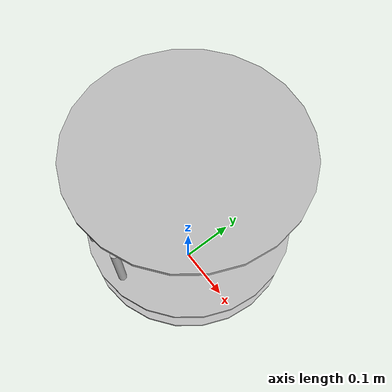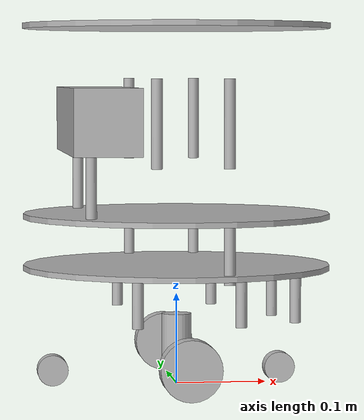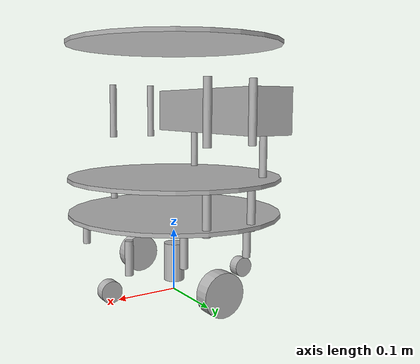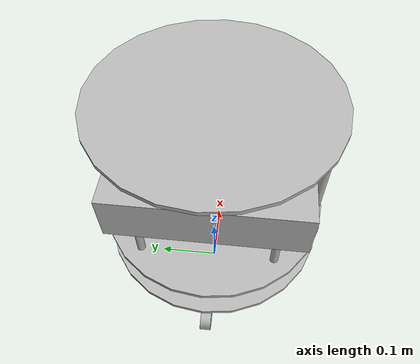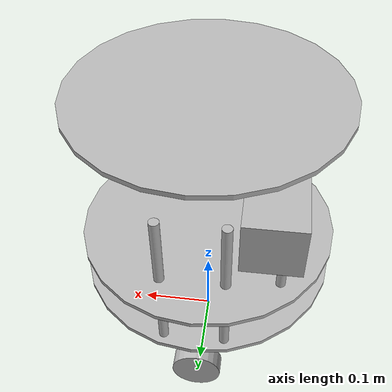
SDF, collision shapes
<?xml version="1.0" ?>
<sdf version="1.4">
  <model name="turtlebot2">
    <link name="rack">
      <inertial>
        <pose>0.001453 -0.000453 0.029787 0 0 0</pose>
        <inertia>
          <ixx>0.0001</ixx>
          <ixy>0.0</ixy>
          <ixz>0.0</ixz>
          <iyy>0.0001</iyy>
          <iyz>0.0</iyz>
          <izz>0.0001</izz>
        </inertia>
        <mass>2.4000</mass>
      </inertial>

      <collision name="plate_bottom_collision">
        <pose>0.0 0.0 0.1306 0 0 0</pose>
        <geometry>
          <cylinder>
	    <radius>0.170</radius>
	    <length>0.006</length>
          </cylinder>
        </geometry>
      </collision>
      <visual name="plate_bottom_visual">
        <pose>0.02364 0.0 0.1306 0 0 0</pose>
        <geometry>
          <mesh>
            <uri>model://turtlebot2/meshes/plate_bottom.dae</uri>
          </mesh>
        </geometry>
      </visual>

      <collision name="plate_middle_collision">
        <pose>0.0 0.0 0.1874 0 0 0</pose>
        <geometry>
          <cylinder>
	    <radius>0.170</radius>
	    <length>0.006</length>
          </cylinder>
        </geometry>
      </collision>
      <visual name="plate_middle_visual">
        <pose> -0.01364 0.0 0.1874 0 0 0</pose>
        <geometry>
          <mesh>
            <uri>model://turtlebot2/meshes/plate_middle.dae</uri>
          </mesh>
        </geometry>
      </visual>

      <collision name="plate_top_collision">
        <pose>0.0 0.0 0.3966 0 0 0</pose>
        <geometry>
          <cylinder>
	    <radius>0.170</radius>
	    <length>0.006</length>
          </cylinder>
        </geometry>
      </collision>
      <visual name="plate_middle_visual">
        <pose>-0.01364 0.0  0.3966 0 0 0</pose>
        <geometry>
          <mesh>
            <uri>model://turtlebot2/meshes/plate_middle.dae</uri>
          </mesh>
        </geometry>
      </visual>

      <collision name="3d_sensor_pole_0_collision">
        <pose>-0.1024 0.098  0.2372 0 0 0</pose>
        <geometry>
          <cylinder>
	    <radius>0.006</radius>
	    <length>0.0936</length>
          </cylinder>
        </geometry>
      </collision>
      <visual name="3d_sensor_pole_0_visual">
        <pose>-0.1024 0.098  0.2372 0 0 0</pose>
        <geometry>
          <mesh>
            <uri>model://turtlebot2/meshes/pole_kinect.dae</uri>
          </mesh>
        </geometry>
      </visual>

      <collision name="3d_sensor_pole_1_collision">
        <pose>-0.1024 -0.098  0.2372 0 0 0</pose>
        <geometry>
          <cylinder>
	    <radius>0.006</radius>
	    <length>0.0936</length>
          </cylinder>
        </geometry>
      </collision>
      <visual name="3d_sensor_pole_1_visual">
        <pose>-0.1024 -0.098  0.2372 0 0 0</pose>
        <geometry>
          <mesh>
            <uri>model://turtlebot2/meshes/pole_kinect.dae</uri>
          </mesh>
        </geometry>
      </visual>

      <collision name="bottom_pole_0_collision">
        <pose>0.120 0.08 0.09 0 0 0</pose>
        <geometry>
          <cylinder>
	    <radius>0.006</radius>
	    <length>0.0492</length>
          </cylinder>
        </geometry>
      </collision>
      <visual name="pole_bottom_0_visual">
        <pose>0.120 0.08 0.1 0 0 0</pose>
        <geometry>
          <mesh>
            <uri>model://turtlebot2/meshes/pole_middle.dae</uri>
          </mesh>
        </geometry>
      </visual>

      <collision name="bottom_pole_1_collision">
        <pose>0.055 0.120 0.1 0 0 0</pose>
        <geometry>
          <cylinder>
	    <radius>0.006</radius>
	    <length>0.0492</length>
          </cylinder>
        </geometry>
      </collision>
      <visual name="pole_bottom_1_visual">
        <pose>0.055 0.120 0.1 0 0 0</pose>
        <geometry>
          <mesh>
            <uri>model://turtlebot2/meshes/pole_middle.dae</uri>
          </mesh>
        </geometry>
      </visual>

      <collision name="bottom_pole_2_collision">
        <pose>-0.055 0.120 0.1 0 0 0</pose>
        <geometry>
          <cylinder>
	    <radius>0.006</radius>
	    <length>0.0492</length>
          </cylinder>
        </geometry>
      </collision>
      <visual name="pole_bottom_2_visual">
        <pose>-0.055 0.120 0.1 0 0 0</pose>
        <geometry>
          <mesh>
            <uri>model://turtlebot2/meshes/pole_middle.dae</uri>
          </mesh>
        </geometry>
      </visual>

      <collision name="bottom_pole_3_collision">
        <pose>0.120 -0.08 0.1 0 0 0</pose>
        <geometry>
          <cylinder>
	    <radius>0.006</radius>
	    <length>0.0492</length>
          </cylinder>
        </geometry>
      </collision>
      <visual name="pole_bottom_3_visual">
        <pose>0.120 -0.08 0.1 0 0 0</pose>
        <geometry>
          <mesh>
            <uri>model://turtlebot2/meshes/pole_middle.dae</uri>
          </mesh>
        </geometry>
      </visual>

      <collision name="bottom_pole_4_collision">
        <pose>0.055 -0.120 0.1 0 0 0</pose>
        <geometry>
          <cylinder>
	    <radius>0.006</radius>
	    <length>0.0492</length>
          </cylinder>
        </geometry>
      </collision>
      <visual name="pole_bottom_4_visual">
        <pose>0.055 -0.120 0.1 0 0 0</pose>
        <geometry>
          <mesh>
            <uri>model://turtlebot2/meshes/pole_middle.dae</uri>
          </mesh>
        </geometry>
      </visual>

      <collision name="bottom_pole_5_collision">
        <pose>-0.055 -0.120 0.1 0 0 0</pose>
        <geometry>
          <cylinder>
	    <radius>0.006</radius>
	    <length>0.0492</length>
          </cylinder>
        </geometry>
      </collision>
      <visual name="pole_bottom_5_visual">
        <pose>-0.055 -0.120 0.1 0 0 0</pose>
        <geometry>
          <mesh>
            <uri>model://turtlebot2/meshes/pole_bottom.dae</uri>
          </mesh>
        </geometry>
      </visual>

      <collision name="middle_pole_0_collision">
        <pose>0.0381 0.1505 0.1540 0 0 0</pose>
        <geometry>
          <cylinder>
	    <radius>0.006</radius>
	    <length>0.0608</length>
          </cylinder>
        </geometry>
      </collision>
      <visual name="middle_pole_0_visual">
        <pose>0.0381 0.1505 0.1540 0 0 0</pose>
        <geometry>
          <mesh>
            <uri>model://turtlebot2/meshes/pole_middle.dae</uri>
          </mesh>
        </geometry>
      </visual>

      <collision name="middle_pole_1_collision">
        <pose>0.0381 -0.1505 0.1540 0 0 0</pose>
        <geometry>
          <cylinder>
	    <radius>0.006</radius>
	    <length>0.0608</length>
          </cylinder>
        </geometry>
      </collision>
      <visual name="middle_pole_1_visual">
        <pose>0.0381 -0.1505 0.1540 0 0 0</pose>
        <geometry>
          <mesh>
            <uri>model://turtlebot2/meshes/pole_middle.dae</uri>
          </mesh>
        </geometry>
      </visual>

      <collision name="middle_pole_2_collision">
        <pose>-0.0381 0.1505 0.1540 0 0 0</pose>
        <geometry>
          <cylinder>
	    <radius>0.006</radius>
	    <length>0.0608</length>
          </cylinder>
        </geometry>
      </collision>
      <visual name="middle_pole_2_visual">
        <pose>-0.0381 0.1505 0.1540 0 0 0</pose>
        <geometry>
          <mesh>
            <uri>model://turtlebot2/meshes/pole_middle.dae</uri>
          </mesh>
        </geometry>
      </visual>

      <collision name="middle_pole_3_collision">
        <pose>-0.0381 0.1505 0.1540 0 0 0</pose>
        <geometry>
          <cylinder>
	    <radius>0.006</radius>
	    <length>0.0608</length>
          </cylinder>
        </geometry>
      </collision>
      <visual name="middle_pole_3_visual">
        <pose>-0.0381 -0.1505 0.1540 0 0 0</pose>
        <geometry>
          <mesh>
            <uri>model://turtlebot2/meshes/pole_middle.dae</uri>
          </mesh>
        </geometry>
      </visual>

      <collision name="top_pole_0_collision">
        <pose>0.0381 0.1505 0.2920 0 0 0</pose>
        <geometry>
          <cylinder>
	    <radius>0.006</radius>
	    <length>0.0936</length>
          </cylinder>
        </geometry>
      </collision>
      <visual name="3d_sensor_pole_0_visual">
        <pose>0.0381 0.1505 0.2920 0 0 0</pose>
        <geometry>
          <mesh>
            <uri>model://turtlebot2/meshes/pole_top.dae</uri>
          </mesh>
        </geometry>
      </visual>

      <collision name="top_pole_1_collision">
        <pose>0.0381 -0.1505 0.2920 0 0 0</pose>
        <geometry>
          <cylinder>
	    <radius>0.006</radius>
	    <length>0.0936</length>
          </cylinder>
        </geometry>
      </collision>
      <visual name="3d_sensor_pole_1_visual">
        <pose>0.0381 -0.1505 0.2920 0 0 0</pose>
        <geometry>
          <mesh>
            <uri>model://turtlebot2/meshes/pole_top.dae</uri>
          </mesh>
        </geometry>
      </visual>

      <collision name="top_pole_2_collision">
        <pose>-0.0381 0.1505 0.2920 0 0 0</pose>
        <geometry>
          <cylinder>
	    <radius>0.006</radius>
	    <length>0.0936</length>
          </cylinder>
        </geometry>
      </collision>
      <visual name="3d_sensor_pole_2_visual">
        <pose>-0.0381 0.1505 0.2920 0 0 0</pose>
        <geometry>
          <mesh>
            <uri>model://turtlebot2/meshes/pole_top.dae</uri>
          </mesh>
        </geometry>
      </visual>

      <collision name="top_pole_3_collision">
        <pose>-0.0381 -0.1505 0.2920 0 0 0</pose>
        <geometry>
          <cylinder>
	    <radius>0.006</radius>
	    <length>0.0936</length>
          </cylinder>
        </geometry>
      </collision>
      <visual name="3d_sensor_pole_2_visual">
        <pose>-0.0381 -0.1505 0.2920 0 0 0</pose>
        <geometry>
          <mesh>
            <uri>model://turtlebot2/meshes/pole_top.dae</uri>
          </mesh>
        </geometry>
      </visual>
      <sensor name="laser" type="ray">
        <pose>-0.065000 0 0.092000 0 0 0</pose>
        <ray>
          <scan>
            <horizontal>
              <samples>180</samples>
              <resolution>1.000000</resolution>
              <min_angle>-2.268928</min_angle>
              <max_angle>2.268928</max_angle>
            </horizontal>
          </scan>
          <range>
            <min>0.080000</min>
            <max>10</max>
            <resolution>0.010000</resolution>
          </range>
        </ray>
        <update_rate>20</update_rate>
      </sensor>
    </link>
    <include>
      <uri>model://kinect</uri>
      <pose>-0.087098 0 0.293 0 0 0</pose>
    </include>
    <include>
      <uri>model://kobuki</uri>
    </include>

    <joint name="create_rack" type="revolute">
      <parent>kobuki::base</parent>
      <child>rack</child>
      <axis>
        <xyz>0 0 1</xyz>
        <limit>
          <lower>0</lower>
          <upper>0</upper>
        </limit>
        <use_parent_model_frame>true</use_parent_model_frame>
      </axis>
    </joint>
    <joint name="kinect_rack" type="revolute">
      <parent>kinect::link</parent>
      <child>rack</child>
      <axis>
        <xyz>0 0 1</xyz>
        <limit>
          <lower>0</lower>
          <upper>0</upper>
        </limit>
        <use_parent_model_frame>true</use_parent_model_frame>
      </axis>
    </joint>
  </model>
</sdf>

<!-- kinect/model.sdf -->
<sdf version="1.5">
  <model name="kinect">
    <pose>0 0 0.036 0 0 0</pose>
    <link name="link">
      <inertial>
        <mass>0.1</mass>
      </inertial>
      <collision name="collision">
        <geometry>
          <box>
            <size>0.073000 0.276000 0.072000</size>
          </box>
        </geometry>
      </collision>
      <visual name="visual">
        <geometry>
          <mesh>
            <uri>model://../model_source/models/kinect/meshes/kinect.dae</uri>
          </mesh>
        </geometry>
      </visual>
      <sensor name="camera" type="depth">
        <update_rate>20</update_rate>
        <camera>
          <horizontal_fov>1.047198</horizontal_fov>
          <image>
            <width>640</width>
            <height>480</height>
            <format>R8G8B8</format>
          </image>
          <clip>
            <near>0.05</near>
            <far>3</far>
          </clip>
        </camera>
      </sensor>
    </link>
  </model>
</sdf>

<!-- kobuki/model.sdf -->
<sdf version="1.5">
  <model name="kobuki">

    <link name="base">
      <inertial>
        <pose>0.001453 -0.000453 0.03 0 0 0</pose>
        <inertia>
          <ixx>0.058640</ixx>
          <ixy>0.000124</ixy>
          <ixz>0.000615</ixz>
          <iyy>0.058786</iyy>
          <iyz>0.000014</iyz>
          <izz>1.532440</izz>
        </inertia>
        <mass>2.234000</mass>
      </inertial>
      <collision name="base_collision">
        <pose>0 0 0.047800 0 0 0</pose>
        <geometry>
          <cylinder>
            <radius>0.016495</radius>
            <length>0.061163</length>
          </cylinder>
        </geometry>
      </collision>
      <visual name="base_visual">
        <pose>0 0 0.06 0 0 0</pose>
        <geometry>
          <mesh>
            <uri>model://kobuki/meshes/main_body.dae</uri>
          </mesh>
        </geometry>
      </visual>

      <collision name="front_wheel_collision">
        <pose>0.115 0 0.017000 0 1.570700 1.570700</pose>
        <geometry>
          <cylinder>
            <radius>0.017</radius>
            <length>0.0176</length>
          </cylinder>
        </geometry>
        <surface>
          <friction>
            <ode>
              <mu>0</mu>
              <mu2>0</mu2>
              <fdir1>0 0 0</fdir1>
              <slip1>0</slip1>
              <slip2>0</slip2>
            </ode>
          </friction>
        </surface>
      </collision>

      <collision name="rear_wheel_collision">
        <pose>-0.138 0 0.017 0 1.5707 1.5707</pose>
        <geometry>
          <cylinder>
            <radius>0.017</radius>
            <length>0.0176</length>
          </cylinder>
        </geometry>
        <surface>
          <friction>
            <ode>
              <mu>0</mu>
              <mu2>0</mu2>
              <fdir1>0 0 0</fdir1>
              <slip1>0</slip1>
              <slip2>0</slip2>
            </ode>
          </friction>
        </surface>
      </collision>

      <sensor name="left_cliff_sensor" type="ray">
        <pose>0.070000 0.140000 0.027000 0 1.570790 0</pose>
        <ray>
          <scan>
            <horizontal>
              <samples>1</samples>
              <resolution>1.000000</resolution>
              <min_angle>0</min_angle>
              <max_angle>0</max_angle>
            </horizontal>
          </scan>
          <range>
            <min>0.010000</min>
            <max>0.040000</max>
            <resolution>0.100000</resolution>
          </range>
        </ray>
      </sensor>
      <sensor name="leftfront_cliff_sensor" type="ray">
        <pose>0.150000 0.040000 0.027000 0 1.570790 0</pose>
        <ray>
          <scan>
            <horizontal>
              <samples>1</samples>
              <resolution>1.000000</resolution>
              <min_angle>0</min_angle>
              <max_angle>0</max_angle>
            </horizontal>
          </scan>
          <range>
            <min>0.010000</min>
            <max>0.040000</max>
            <resolution>0.100000</resolution>
          </range>
        </ray>
      </sensor>
      <sensor name="right_cliff_sensor" type="ray">
        <pose>0.070000 -0.140000 0.027000 0 1.570790 0</pose>
        <ray>
          <scan>
            <horizontal>
              <samples>1</samples>
              <resolution>1.000000</resolution>
              <min_angle>0</min_angle>
              <max_angle>0</max_angle>
            </horizontal>
          </scan>
          <range>
            <min>0.010000</min>
            <max>0.040000</max>
            <resolution>0.100000</resolution>
          </range>
        </ray>
      </sensor>
      <sensor name="rightfront_cliff_sensor" type="ray">
        <pose>0.150000 -0.040000 0.027000 0 1.570790 0</pose>
        <ray>
          <scan>
            <horizontal>
              <samples>1</samples>
              <resolution>1.000000</resolution>
              <min_angle>0</min_angle>
              <max_angle>0</max_angle>
            </horizontal>
          </scan>
          <range>
            <min>0.010000</min>
            <max>0.040000</max>
            <resolution>0.100000</resolution>
          </range>
        </ray>
      </sensor>
      <sensor name="wall_sensor" type="ray">
        <pose>0.090000 -0.120000 0.059000 0 0 -1.000000</pose>
        <ray>
          <scan>
            <horizontal>
              <samples>1</samples>
              <resolution>1.000000</resolution>
              <min_angle>0</min_angle>
              <max_angle>0</max_angle>
            </horizontal>
          </scan>
          <range>
            <min>0.016000</min>
            <max>0.040000</max>
            <resolution>0.100000</resolution>
          </range>
        </ray>
      </sensor>
    </link>

    <link name="left_wheel">
      <pose>0 0.130000 0.032000 0 0 0</pose>
      <inertial>
        <inertia>
          <ixx>0.001000</ixx>
          <ixy>0</ixy>
          <ixz>0</ixz>
          <iyy>0.001000</iyy>
          <iyz>0</iyz>
          <izz>0.001000</izz>
        </inertia>
        <mass>0.010000</mass>
      </inertial>
      <collision name="left_wheel_collision">
        <pose>0 0 0 0 1.570700 1.570700</pose>
        <geometry>
          <cylinder>
            <radius>0.033000</radius>
            <length>0.023000</length>
          </cylinder>
        </geometry>
        <surface>
          <friction>
            <ode>
              <mu>10</mu>
              <mu2>10</mu2>
              <fdir1>0 0 0</fdir1>
              <slip1>0</slip1>
              <slip2>0</slip2>
            </ode>
          </friction>
        </surface>
      </collision>
      <visual name="visual">
        <pose>0 0 0 0 1.570700 1.570700</pose>
        <geometry>
          <mesh>
            <uri>model://kobuki/meshes/wheel.dae</uri>
          </mesh>
        </geometry>
      </visual>
    </link>

    <link name="right_wheel">
      <pose>0 -0.130000 0.032000 0 0 0</pose>
      <inertial>
        <inertia>
          <ixx>0.001000</ixx>
          <ixy>0</ixy>
          <ixz>0</ixz>
          <iyy>0.001000</iyy>
          <iyz>0</iyz>
          <izz>0.001000</izz>
        </inertia>
        <mass>0.010000</mass>
      </inertial>
      <collision name="right_wheel_collision">
        <pose>0 0 0 0 1.570700 1.570700</pose>
        <geometry>
          <cylinder>
            <radius>0.033000</radius>
            <length>0.023000</length>
          </cylinder>
        </geometry>
        <surface>
          <friction>
            <ode>
              <mu>10</mu>
              <mu2>10</mu2>
              <fdir1>0 0 0</fdir1>
              <slip1>0</slip1>
              <slip2>0</slip2>
            </ode>
          </friction>
        </surface>
      </collision>
      <visual name="visual">
        <pose>0 0 0 0 1.570700 1.570700</pose>
        <geometry>
          <mesh>
            <uri>model://kobuki/meshes/wheel.dae</uri>
          </mesh>
        </geometry>
      </visual>
    </link>

    <joint name="left_wheel_joint" type="revolute">
      <parent>base</parent>
      <child>left_wheel</child>
      <axis>
        <xyz>0 1 0</xyz>
        <use_parent_model_frame>true</use_parent_model_frame>
      </axis>
    </joint>

    <joint name="right_wheel_joint" type="revolute">
      <parent>base</parent>
      <child>right_wheel</child>
      <axis>
        <xyz>0 1 0</xyz>
        <use_parent_model_frame>true</use_parent_model_frame>
      </axis>
    </joint>

  </model>
</sdf>
